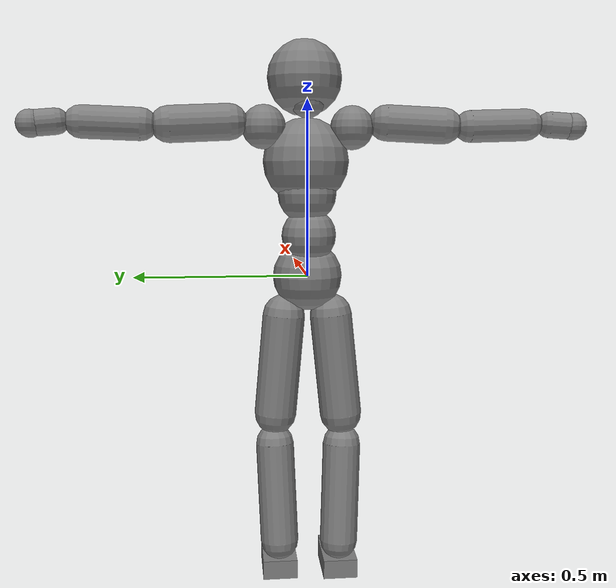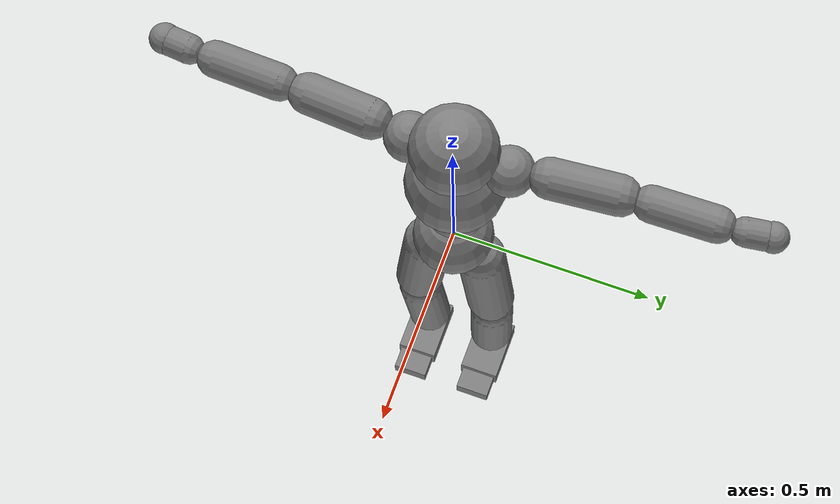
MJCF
<mujoco model="smpl">
  <compiler angle="radian" />
  <default>
    <motor ctrlrange="-1 1" ctrllimited="true" />
    <geom condim="1" friction="1.0 0.05 0.05" solimp=".9 .99 .003" solref=".015 1" />
    <joint limited="true" solimplimit="0 .99 .01" />
    <site size=".04" group="3" />
    <default class="force-torque">
      <site type="box" size=".01 .01 .02" rgba="1 0 0 1" />
    </default>
    <default class="touch">
      <site type="capsule" rgba="0 0 1 .3" />
    </default>
  </default>
  <worldbody>
    <body name="Pelvis" pos="0.000000 0.000000 0.000000">
      <freejoint name="Pelvis" />
      <geom type="sphere" contype="1" conaffinity="1" density="1440.858297" size="0.100395" pos="0.000000 0.000000 0.000000" />
      <body name="L_Hip" pos="-0.006596 0.067415 -0.088658">
        <joint name="L_Hip_x" type="hinge" pos="0 0 0" axis="1 0 0" actuatorfrcrange="-300 300" stiffness="500" damping="50" armature="0.02" range="-0.5236 1.5708" />
        <joint name="L_Hip_y" type="hinge" pos="0 0 0" axis="0 1 0" actuatorfrcrange="-300 300" stiffness="500" damping="50" armature="0.02" range="-2.4435 1.0472" />
        <joint name="L_Hip_z" type="hinge" pos="0 0 0" axis="0 0 1" actuatorfrcrange="-300 300" stiffness="500" damping="50" armature="0.02" range="-0.6109 1.0472" />
        <geom type="capsule" contype="1" conaffinity="1" density="1207.646735" fromto="-0.000306 0.002329 -0.025476 -0.003841 0.029278 -0.320271" size="0.061352" />
        <body name="L_Knee" pos="-0.004365 0.033271 -0.363944">
          <joint name="L_Knee_x" type="hinge" pos="0 0 0" axis="1 0 0" actuatorfrcrange="-200 200" stiffness="500" damping="50" armature="0.02" range="-0.5236 0.5236" />
          <joint name="L_Knee_y" type="hinge" pos="0 0 0" axis="0 1 0" actuatorfrcrange="-200 200" stiffness="500" damping="50" armature="0.02" range="0 2.7925" />
          <joint name="L_Knee_z" type="hinge" pos="0 0 0" axis="0 0 1" actuatorfrcrange="-200 200" stiffness="500" damping="50" armature="0.02" range="-0.5236 0.5236" />
          <geom type="capsule" contype="1" conaffinity="1" density="1008.445341" fromto="-0.005087 -0.001583 -0.046327 -0.037302 -0.011609 -0.339733" size="0.055775" />
          <body name="L_Ankle" pos="-0.042389 -0.013192 -0.386060">
            <joint name="L_Ankle_x" type="hinge" pos="0 0 0" axis="1 0 0" actuatorfrcrange="-100 100" stiffness="400" damping="40" armature="0.02" range="-0.5236 0.5236" />
            <joint name="L_Ankle_y" type="hinge" pos="0 0 0" axis="0 1 0" actuatorfrcrange="-100 100" stiffness="400" damping="40" armature="0.02" range="-0.9599 0.9599" />
            <joint name="L_Ankle_z" type="hinge" pos="0 0 0" axis="0 0 1" actuatorfrcrange="-100 100" stiffness="400" damping="40" armature="0.02" range="-0.6981 0.6981" />
            <geom type="box" contype="1" conaffinity="1" density="828.493521" pos="0.033562 0.002328 -0.027063" size="0.077600 0.050197 0.027887" quat="1.0000 0.0000 0.0000 0.0000" />
            <body name="L_Toe" pos="0.115721 0.012028 -0.025026">
              <joint name="L_Toe_x" type="hinge" pos="0 0 0" axis="1 0 0" actuatorfrcrange="-75 75" stiffness="200" damping="20" armature="0.02" range="-0.5236 0.5236" />
              <joint name="L_Toe_y" type="hinge" pos="0 0 0" axis="0 1 0" actuatorfrcrange="-75 75" stiffness="200" damping="20" armature="0.02" range="-1.0472 1.0472" />
              <joint name="L_Toe_z" type="hinge" pos="0 0 0" axis="0 0 1" actuatorfrcrange="-75 75" stiffness="200" damping="20" armature="0.02" range="-0.5236 0.5236" />
              <geom type="box" contype="1" conaffinity="1" density="828.493521" pos="0.024444 -0.009700 -0.007760" size="0.027887 0.043650 0.020079" quat="1.0000 0.0000 0.0000 0.0000" />
            </body>
          </body>
        </body>
      </body>
      <body name="R_Hip" pos="-0.004171 -0.065669 -0.087785">
        <joint name="R_Hip_x" type="hinge" pos="0 0 0" axis="1 0 0" actuatorfrcrange="-300 300" stiffness="500" damping="50" armature="0.02" range="-1.5708 0.5236" />
        <joint name="R_Hip_y" type="hinge" pos="0 0 0" axis="0 1 0" actuatorfrcrange="-300 300" stiffness="500" damping="50" armature="0.02" range="-2.4435 1.0472" />
        <joint name="R_Hip_z" type="hinge" pos="0 0 0" axis="0 0 1" actuatorfrcrange="-300 300" stiffness="500" damping="50" armature="0.02" range="-1.0472 0.6109" />
        <geom type="capsule" contype="1" conaffinity="1" density="1208.208526" fromto="-0.000604 -0.002601 -0.025979 -0.007597 -0.032693 -0.326587" size="0.061352" />
        <body name="R_Knee" pos="-0.008633 -0.037151 -0.371122">
          <joint name="R_Knee_x" type="hinge" pos="0 0 0" axis="1 0 0" actuatorfrcrange="-200 200" stiffness="500" damping="50" armature="0.02" range="-0.5236 0.5236" />
          <joint name="R_Knee_y" type="hinge" pos="0 0 0" axis="0 1 0" actuatorfrcrange="-200 200" stiffness="500" damping="50" armature="0.02" range="0 2.7925" />
          <joint name="R_Knee_z" type="hinge" pos="0 0 0" axis="0 0 1" actuatorfrcrange="-200 200" stiffness="500" damping="50" armature="0.02" range="-0.5236 0.5236" />
          <geom type="capsule" contype="1" conaffinity="1" density="1008.463095" fromto="-0.004924 0.001839 -0.046374 -0.036107 0.013487 -0.340074" size="0.055775" />
          <body name="R_Ankle" pos="-0.041031 0.015326 -0.386448">
            <joint name="R_Ankle_x" type="hinge" pos="0 0 0" axis="1 0 0" actuatorfrcrange="-100 100" stiffness="400" damping="40" armature="0.02" range="-0.5236 0.5236" />
            <joint name="R_Ankle_y" type="hinge" pos="0 0 0" axis="0 1 0" actuatorfrcrange="-100 100" stiffness="400" damping="40" armature="0.02" range="-0.9599 0.9599" />
            <joint name="R_Ankle_z" type="hinge" pos="0 0 0" axis="0 0 1" actuatorfrcrange="-100 100" stiffness="400" damping="40" armature="0.02" range="-0.6981 0.6981" />
            <geom type="box" contype="1" conaffinity="1" density="828.493521" pos="0.033562 -0.002328 -0.027063" size="0.077600 0.050197 0.027887" quat="1.0000 0.0000 0.0000 0.0000" />
            <body name="R_Toe" pos="0.115721 -0.012028 -0.025026">
              <joint name="R_Toe_x" type="hinge" pos="0 0 0" axis="1 0 0" actuatorfrcrange="-75 75" stiffness="200" damping="20" armature="0.02" range="-0.5236 0.5236" />
              <joint name="R_Toe_y" type="hinge" pos="0 0 0" axis="0 1 0" actuatorfrcrange="-75 75" stiffness="200" damping="20" armature="0.02" range="-1.0472 1.0472" />
              <joint name="R_Toe_z" type="hinge" pos="0 0 0" axis="0 0 1" actuatorfrcrange="-75 75" stiffness="200" damping="20" armature="0.02" range="-0.5236 0.5236" />
              <geom type="box" contype="1" conaffinity="1" density="828.493521" pos="0.024444 0.009700 -0.007760" size="0.027887 0.043650 0.020079" quat="1.0000 0.0000 0.0000 0.0000" />
            </body>
          </body>
        </body>
      </body>
      <body name="Torso" pos="-0.025899 -0.002425 0.105730">
        <joint name="Torso_x" type="hinge" pos="0 0 0" axis="1 0 0" actuatorfrcrange="-300 300" stiffness="1000" damping="100" armature="0.02" range="-1.0472 1.0472" />
        <joint name="Torso_y" type="hinge" pos="0 0 0" axis="0 1 0" actuatorfrcrange="-300 300" stiffness="1000" damping="100" armature="0.02" range="-1.0472 1.5708" />
        <joint name="Torso_z" type="hinge" pos="0 0 0" axis="0 0 1" actuatorfrcrange="-300 300" stiffness="1000" damping="100" armature="0.02" range="-0.8727 0.8727" />
        <geom type="sphere" contype="1" conaffinity="1" density="1440.858297" size="0.078085" pos="0.000107 0.000534 0.013114" />
        <body name="Spine" pos="0.001067 0.005335 0.131144">
          <joint name="Spine_x" type="hinge" pos="0 0 0" axis="1 0 0" actuatorfrcrange="-200 200" stiffness="1000" damping="100" armature="0.02" range="-1.0472 1.0472" />
          <joint name="Spine_y" type="hinge" pos="0 0 0" axis="0 1 0" actuatorfrcrange="-200 200" stiffness="1000" damping="100" armature="0.02" range="-1.0472 1.5708" />
          <joint name="Spine_z" type="hinge" pos="0 0 0" axis="0 0 1" actuatorfrcrange="-200 200" stiffness="1000" damping="100" armature="0.02" range="-0.8727 0.8727" />
          <geom type="sphere" contype="1" conaffinity="1" density="1440.858297" size="0.083662" pos="0.000000 0.000000 0.000000" />
          <body name="Chest" pos="0.024638 0.001455 0.051313">
            <joint name="Chest_x" type="hinge" pos="0 0 0" axis="1 0 0" actuatorfrcrange="-150 150" stiffness="1000" damping="100" armature="0.02" range="-1.0472 1.0472" />
            <joint name="Chest_y" type="hinge" pos="0 0 0" axis="0 1 0" actuatorfrcrange="-150 150" stiffness="1000" damping="100" armature="0.02" range="-1.0472 1.5708" />
            <joint name="Chest_z" type="hinge" pos="0 0 0" axis="0 0 1" actuatorfrcrange="-150 150" stiffness="1000" damping="100" armature="0.02" range="-0.8727 0.8727" />
            <geom type="sphere" contype="1" conaffinity="1" density="1440.858297" size="0.122705" pos="-0.007760 0.000000 0.038800" />
            <body name="Neck" pos="-0.041613 -0.002716 0.207483">
              <joint name="Neck_x" type="hinge" pos="0 0 0" axis="1 0 0" actuatorfrcrange="-75 75" stiffness="500" damping="50" armature="0.02" range="-0.8727 0.8727" />
              <joint name="Neck_y" type="hinge" pos="0 0 0" axis="0 1 0" actuatorfrcrange="-75 75" stiffness="500" damping="50" armature="0.02" range="-0.6981 1.0472" />
              <joint name="Neck_z" type="hinge" pos="0 0 0" axis="0 0 1" actuatorfrcrange="-75 75" stiffness="500" damping="50" armature="0.02" range="-0.7854 0.7854" />
              <geom type="sphere" contype="1" conaffinity="1" density="720.429149" size="0.050197" pos="0.019400 0.000000 0.000000" />
              <body name="Head" pos="0.049761 0.005044 0.063050">
                <joint name="Head_x" type="hinge" pos="0 0 0" axis="1 0 0" actuatorfrcrange="-25 25" stiffness="200" damping="20" armature="0.02" range="-0.8727 0.8727" />
                <joint name="Head_y" type="hinge" pos="0 0 0" axis="0 1 0" actuatorfrcrange="-25 25" stiffness="200" damping="20" armature="0.02" range="-0.6981 1.0472" />
                <joint name="Head_z" type="hinge" pos="0 0 0" axis="0 0 1" actuatorfrcrange="-25 25" stiffness="200" damping="20" armature="0.02" range="-0.7854 0.7854" />
                <geom type="sphere" contype="1" conaffinity="1" density="720.429149" size="0.105972" pos="0.000000 0.000000 0.000000" />
              </body>
            </body>
            <body name="L_Thorax" pos="-0.033077 0.076436 0.118049">
              <joint name="L_Thorax_x" type="hinge" pos="0 0 0" axis="1 0 0" actuatorfrcrange="-200 200" stiffness="500" damping="50" armature="0.02" range="-0.6981 0.5236" />
              <joint name="L_Thorax_y" type="hinge" pos="0 0 0" axis="0 1 0" actuatorfrcrange="-200 200" stiffness="500" damping="50" armature="0.02" range="-0.5236 0.5236" />
              <joint name="L_Thorax_z" type="hinge" pos="0 0 0" axis="0 0 1" actuatorfrcrange="-200 200" stiffness="500" damping="50" armature="0.02" range="-0.5236 0.5236" />
              <geom type="sphere" contype="1" conaffinity="1" density="720.429149" size="0.061352" pos="-0.004317 0.044135 0.014793" />
              <body name="L_Shoulder" pos="-0.008633 0.088270 0.029585">
                <joint name="L_Shoulder_x" type="hinge" pos="0 0 0" axis="1 0 0" actuatorfrcrange="-150 150" stiffness="400" damping="40" armature="0.02" range="-2.3562 1.5708" />
                <joint name="L_Shoulder_y" type="hinge" pos="0 0 0" axis="0 1 0" actuatorfrcrange="-150 150" stiffness="400" damping="40" armature="0.02" range="-1.5708 1.5708" />
                <joint name="L_Shoulder_z" type="hinge" pos="0 0 0" axis="0 0 1" actuatorfrcrange="-150 150" stiffness="400" damping="40" armature="0.02" range="-2.7925 1.0472" />
                <geom type="capsule" contype="1" conaffinity="1" density="797.280390" fromto="-0.005335 0.050362 -0.002483 -0.022674 0.214040 -0.010554" size="0.050197" />
                <body name="L_Elbow" pos="-0.026675 0.251812 -0.012416">
                  <joint name="L_Elbow_x" type="hinge" pos="0 0 0" axis="1 0 0" actuatorfrcrange="-100 100" stiffness="300" damping="30" armature="0.02" range="-0.5236 0.5236" />
                  <joint name="L_Elbow_y" type="hinge" pos="0 0 0" axis="0 1 0" actuatorfrcrange="-100 100" stiffness="300" damping="30" armature="0.02" range="-0.5236 0.5236" />
                  <joint name="L_Elbow_z" type="hinge" pos="0 0 0" axis="0 0 1" actuatorfrcrange="-100 100" stiffness="300" damping="30" armature="0.02" range="-2.7925 0" />
                  <geom type="capsule" contype="1" conaffinity="1" density="798.833031" fromto="-0.000175 0.036259 0.001310 -0.000873 0.193418 0.006984" size="0.044620" />
                  <body name="L_Wrist" pos="-0.001164 0.241724 0.008730">
                    <joint name="L_Wrist_x" type="hinge" pos="0 0 0" axis="1 0 0" actuatorfrcrange="-75 75" stiffness="200" damping="20" armature="0.02" range="-1.5708 1.5708" />
                    <joint name="L_Wrist_y" type="hinge" pos="0 0 0" axis="0 1 0" actuatorfrcrange="-75 75" stiffness="200" damping="20" armature="0.02" range="-1.5708 1.5708" />
                    <joint name="L_Wrist_z" type="hinge" pos="0 0 0" axis="0 0 1" actuatorfrcrange="-75 75" stiffness="200" damping="20" armature="0.02" range="-1.0472 1.0472" />
                    <geom type="capsule" contype="1" conaffinity="1" density="775.901897" fromto="-0.002910 0.016296 -0.001552 -0.011640 0.065184 -0.006305" size="0.035473" />
                    <body name="L_Hand" pos="-0.014453 0.081480 -0.007954">
                      <joint name="L_Hand_x" type="hinge" pos="0 0 0" axis="1 0 0" actuatorfrcrange="-50 50" stiffness="100" damping="10" armature="0.02" range="-1.5708 1.5708" />
                      <joint name="L_Hand_y" type="hinge" pos="0 0 0" axis="0 1 0" actuatorfrcrange="-50 50" stiffness="100" damping="10" armature="0.02" range="-1.5708 1.5708" />
                      <joint name="L_Hand_z" type="hinge" pos="0 0 0" axis="0 0 1" actuatorfrcrange="-50 50" stiffness="100" damping="10" armature="0.02" range="-1.5708 1.5708" />
                      <geom type="sphere" contype="1" conaffinity="1" density="720.429149" size="0.037592" pos="0.000000 0.000000 0.000000" />
                    </body>
                  </body>
                </body>
              </body>
            </body>
            <body name="R_Thorax" pos="-0.037442 -0.079346 0.115236">
              <joint name="R_Thorax_x" type="hinge" pos="0 0 0" axis="1 0 0" actuatorfrcrange="-200 200" stiffness="500" damping="50" armature="0.02" range="-0.5236 0.6981" />
              <joint name="R_Thorax_y" type="hinge" pos="0 0 0" axis="0 1 0" actuatorfrcrange="-200 200" stiffness="500" damping="50" armature="0.02" range="-0.5236 0.5236" />
              <joint name="R_Thorax_z" type="hinge" pos="0 0 0" axis="0 0 1" actuatorfrcrange="-200 200" stiffness="500" damping="50" armature="0.02" range="-0.5236 0.5236" />
              <geom type="sphere" contype="1" conaffinity="1" density="720.429149" size="0.061352" pos="-0.004413 -0.046560 0.015811" />
              <body name="R_Shoulder" pos="-0.008827 -0.093120 0.031622">
                <joint name="R_Shoulder_x" type="hinge" pos="0 0 0" axis="1 0 0" actuatorfrcrange="-150 150" stiffness="400" damping="40" armature="0.02" range="-1.5708 2.3562" />
                <joint name="R_Shoulder_y" type="hinge" pos="0 0 0" axis="0 1 0" actuatorfrcrange="-150 150" stiffness="400" damping="40" armature="0.02" range="-1.5708 1.5708" />
                <joint name="R_Shoulder_z" type="hinge" pos="0 0 0" axis="0 0 1" actuatorfrcrange="-150 150" stiffness="400" damping="40" armature="0.02" range="-1.0472 2.7925" />
                <geom type="capsule" contype="1" conaffinity="1" density="796.725627" fromto="-0.004152 -0.049218 -0.002580 -0.017644 -0.209176 -0.010966" size="0.050197" />
                <body name="R_Elbow" pos="-0.020758 -0.246089 -0.012901">
                  <joint name="R_Elbow_x" type="hinge" pos="0 0 0" axis="1 0 0" actuatorfrcrange="-100 100" stiffness="300" damping="30" armature="0.02" range="-0.5236 0.5236" />
                  <joint name="R_Elbow_y" type="hinge" pos="0 0 0" axis="0 1 0" actuatorfrcrange="-100 100" stiffness="300" damping="30" armature="0.02" range="-0.5236 0.5236" />
                  <joint name="R_Elbow_z" type="hinge" pos="0 0 0" axis="0 0 1" actuatorfrcrange="-100 100" stiffness="300" damping="30" armature="0.02" range="0 2.7925" />
                  <geom type="capsule" contype="1" conaffinity="1" density="799.346315" fromto="-0.000815 -0.037146 0.001135 -0.004346 -0.198113 0.006053" size="0.044620" />
                  <body name="R_Wrist" pos="-0.005432 -0.247641 0.007566">
                    <joint name="R_Wrist_x" type="hinge" pos="0 0 0" axis="1 0 0" actuatorfrcrange="-75 75" stiffness="200" damping="20" armature="0.02" range="-1.5708 1.5708" />
                    <joint name="R_Wrist_y" type="hinge" pos="0 0 0" axis="0 1 0" actuatorfrcrange="-75 75" stiffness="200" damping="20" armature="0.02" range="-1.5708 1.5708" />
                    <joint name="R_Wrist_z" type="hinge" pos="0 0 0" axis="0 0 1" actuatorfrcrange="-75 75" stiffness="200" damping="20" armature="0.02" range="-1.0472 1.0472" />
                    <geom type="capsule" contype="1" conaffinity="1" density="775.167484" fromto="-0.002037 -0.016393 -0.001164 -0.008051 -0.065669 -0.004753" size="0.036365" />
                    <body name="R_Hand" pos="-0.009991 -0.082062 -0.005917">
                      <joint name="R_Hand_x" type="hinge" pos="0 0 0" axis="1 0 0" actuatorfrcrange="-50 50" stiffness="100" damping="10" armature="0.02" range="-1.5708 1.5708" />
                      <joint name="R_Hand_y" type="hinge" pos="0 0 0" axis="0 1 0" actuatorfrcrange="-50 50" stiffness="100" damping="10" armature="0.02" range="-1.5708 1.5708" />
                      <joint name="R_Hand_z" type="hinge" pos="0 0 0" axis="0 0 1" actuatorfrcrange="-50 50" stiffness="100" damping="10" armature="0.02" range="-1.5708 1.5708" />
                      <geom type="sphere" contype="1" conaffinity="1" density="720.429149" size="0.037927" pos="0.000000 0.000000 0.000000" />
                    </body>
                  </body>
                </body>
              </body>
            </body>
          </body>
        </body>
      </body>
    </body>
  </worldbody>
  <actuator>
    <motor name="L_Hip_x" joint="L_Hip_x" gear="300" />
    <motor name="L_Hip_y" joint="L_Hip_y" gear="300" />
    <motor name="L_Hip_z" joint="L_Hip_z" gear="300" />
    <motor name="L_Knee_x" joint="L_Knee_x" gear="200" />
    <motor name="L_Knee_y" joint="L_Knee_y" gear="200" />
    <motor name="L_Knee_z" joint="L_Knee_z" gear="200" />
    <motor name="L_Ankle_x" joint="L_Ankle_x" gear="100" />
    <motor name="L_Ankle_y" joint="L_Ankle_y" gear="100" />
    <motor name="L_Ankle_z" joint="L_Ankle_z" gear="100" />
    <motor name="L_Toe_x" joint="L_Toe_x" gear="75" />
    <motor name="L_Toe_y" joint="L_Toe_y" gear="75" />
    <motor name="L_Toe_z" joint="L_Toe_z" gear="75" />
    <motor name="R_Hip_x" joint="R_Hip_x" gear="300" />
    <motor name="R_Hip_y" joint="R_Hip_y" gear="300" />
    <motor name="R_Hip_z" joint="R_Hip_z" gear="300" />
    <motor name="R_Knee_x" joint="R_Knee_x" gear="200" />
    <motor name="R_Knee_y" joint="R_Knee_y" gear="200" />
    <motor name="R_Knee_z" joint="R_Knee_z" gear="200" />
    <motor name="R_Ankle_x" joint="R_Ankle_x" gear="100" />
    <motor name="R_Ankle_y" joint="R_Ankle_y" gear="100" />
    <motor name="R_Ankle_z" joint="R_Ankle_z" gear="100" />
    <motor name="R_Toe_x" joint="R_Toe_x" gear="75" />
    <motor name="R_Toe_y" joint="R_Toe_y" gear="75" />
    <motor name="R_Toe_z" joint="R_Toe_z" gear="75" />
    <motor name="Torso_x" joint="Torso_x" gear="300" />
    <motor name="Torso_y" joint="Torso_y" gear="300" />
    <motor name="Torso_z" joint="Torso_z" gear="300" />
    <motor name="Spine_x" joint="Spine_x" gear="200" />
    <motor name="Spine_y" joint="Spine_y" gear="200" />
    <motor name="Spine_z" joint="Spine_z" gear="200" />
    <motor name="Chest_x" joint="Chest_x" gear="150" />
    <motor name="Chest_y" joint="Chest_y" gear="150" />
    <motor name="Chest_z" joint="Chest_z" gear="150" />
    <motor name="Neck_x" joint="Neck_x" gear="75" />
    <motor name="Neck_y" joint="Neck_y" gear="75" />
    <motor name="Neck_z" joint="Neck_z" gear="75" />
    <motor name="Head_x" joint="Head_x" gear="25" />
    <motor name="Head_y" joint="Head_y" gear="25" />
    <motor name="Head_z" joint="Head_z" gear="25" />
    <motor name="L_Thorax_x" joint="L_Thorax_x" gear="200" />
    <motor name="L_Thorax_y" joint="L_Thorax_y" gear="200" />
    <motor name="L_Thorax_z" joint="L_Thorax_z" gear="200" />
    <motor name="L_Shoulder_x" joint="L_Shoulder_x" gear="150" />
    <motor name="L_Shoulder_y" joint="L_Shoulder_y" gear="150" />
    <motor name="L_Shoulder_z" joint="L_Shoulder_z" gear="150" />
    <motor name="L_Elbow_x" joint="L_Elbow_x" gear="100" />
    <motor name="L_Elbow_y" joint="L_Elbow_y" gear="100" />
    <motor name="L_Elbow_z" joint="L_Elbow_z" gear="100" />
    <motor name="L_Wrist_x" joint="L_Wrist_x" gear="75" />
    <motor name="L_Wrist_y" joint="L_Wrist_y" gear="75" />
    <motor name="L_Wrist_z" joint="L_Wrist_z" gear="75" />
    <motor name="L_Hand_x" joint="L_Hand_x" gear="50" />
    <motor name="L_Hand_y" joint="L_Hand_y" gear="50" />
    <motor name="L_Hand_z" joint="L_Hand_z" gear="50" />
    <motor name="R_Thorax_x" joint="R_Thorax_x" gear="200" />
    <motor name="R_Thorax_y" joint="R_Thorax_y" gear="200" />
    <motor name="R_Thorax_z" joint="R_Thorax_z" gear="200" />
    <motor name="R_Shoulder_x" joint="R_Shoulder_x" gear="150" />
    <motor name="R_Shoulder_y" joint="R_Shoulder_y" gear="150" />
    <motor name="R_Shoulder_z" joint="R_Shoulder_z" gear="150" />
    <motor name="R_Elbow_x" joint="R_Elbow_x" gear="100" />
    <motor name="R_Elbow_y" joint="R_Elbow_y" gear="100" />
    <motor name="R_Elbow_z" joint="R_Elbow_z" gear="100" />
    <motor name="R_Wrist_x" joint="R_Wrist_x" gear="75" />
    <motor name="R_Wrist_y" joint="R_Wrist_y" gear="75" />
    <motor name="R_Wrist_z" joint="R_Wrist_z" gear="75" />
    <motor name="R_Hand_x" joint="R_Hand_x" gear="50" />
    <motor name="R_Hand_y" joint="R_Hand_y" gear="50" />
    <motor name="R_Hand_z" joint="R_Hand_z" gear="50" />
  </actuator>
</mujoco>
